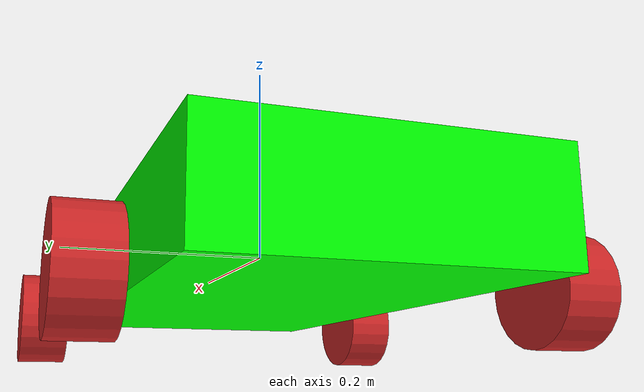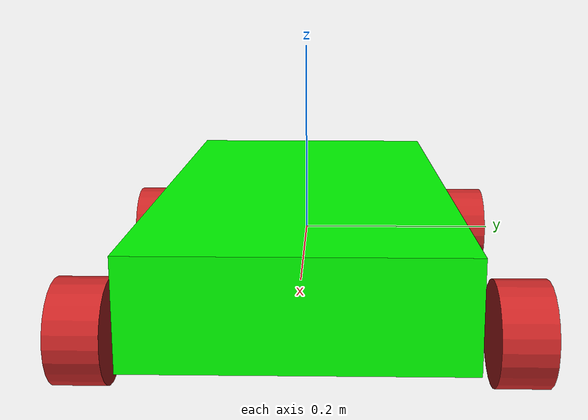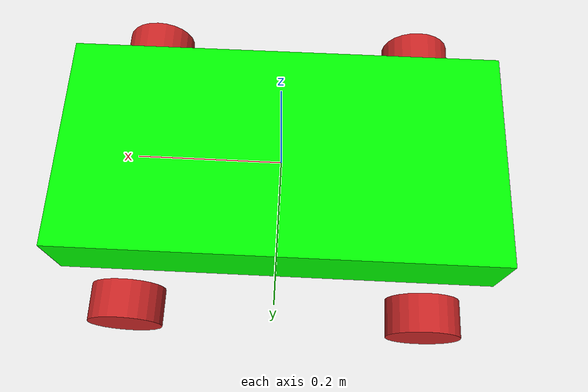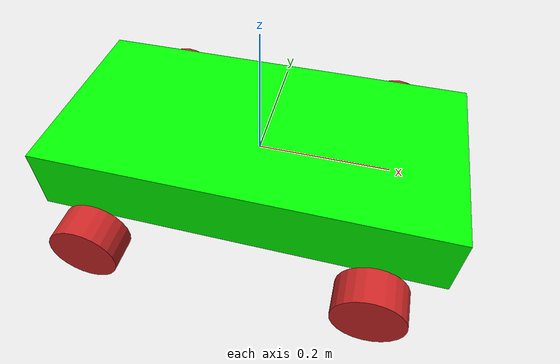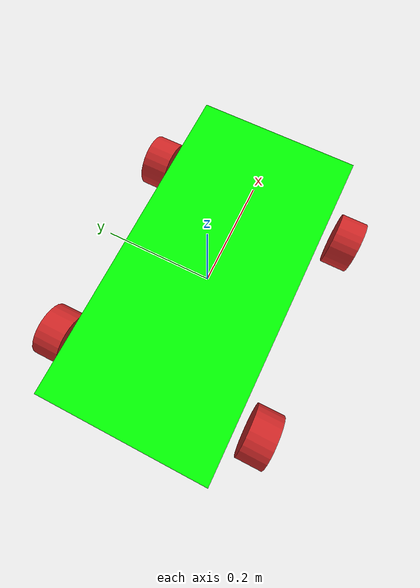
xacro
<?xml version="1.0"?>
<robot xmlns:xacro="http://www.ros.org/wiki/xacro" name="fwd_bot">

    <xacro:include filename="inertial_macros.xacro" />

    <xacro:include filename="gazebo_control.xacro" />
    <!-- xacro:include filename="ros2_control.xacro" / -->

    <xacro:include filename="robot_core.xacro" />

</robot>

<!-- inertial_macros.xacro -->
<robot xmlns:xacro="http://www.ros.org/wiki/xacro" >

    <xacro:macro name="inertial_sphere" params="mass radius *origin">
        <inertial>
            <xacro:insert_block name="origin"/>
            <mass value="${mass}" />
            <inertia ixx="${(2/5) * mass * (radius*radius)}" ixy="0.0" ixz="0.0"
                     iyy="${(2/5) * mass * (radius*radius)}" iyz="0.0"
                     izz="${(2/5) * mass * (radius*radius)}" />
        </inertial>
    </xacro:macro>

    <xacro:macro name="inertial_box" params="mass x y z *origin">
        <inertial>
            <xacro:insert_block name="origin"/>
            <mass value="${mass}" />
            <inertia ixx="${(1/12) * mass * (y*y+z*z)}" ixy="0.0" ixz="0.0"
                     iyy="${(1/12) * mass * (x*x+z*z)}" iyz="0.0"
                     izz="${(1/12) * mass * (x*x+y*y)}" />
        </inertial>
    </xacro:macro>

    <xacro:macro name="inertial_cylinder" params="mass length radius *origin">
        <inertial>
            <xacro:insert_block name="origin"/>
            <mass value="${mass}" />
            <inertia ixx="${(1/12) * mass * (3*radius*radius + length*length)}" ixy="0.0" ixz="0.0"
                     iyy="${(1/12) * mass * (3*radius*radius + length*length)}" iyz="0.0"
                     izz="${(1/2)  * mass * (radius*radius)}" />
        </inertial>
    </xacro:macro>

</robot>

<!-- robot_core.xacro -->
<robot xmlns:xacro="http://www.ros.org/wiki/xacro">
    <xacro:include filename="colors.xacro" />
    <!-- xacro:include filename="inertial_macros.xacro" / -->

    <xacro:property name="base_mass"        value="0.5"  />
    <xacro:property name="base_length"      value="0.6"  />
    <xacro:property name="base_width"       value="0.3"  />
    <xacro:property name="base_height"      value="0.1"  />

    <xacro:property name="wheel_mass"       value="0.1"  />
    <xacro:property name="wheel_radius"     value="0.05" />
    <xacro:property name="wheel_width"      value="0.05"  />
    <xacro:property name="clearance"        value="0.05" />
    <xacro:property name="wheel_separation" value="0.4"  />
    <xacro:property name="wheel_dist_x"     value="0.4"  />

    <xacro:macro name="box_link" params="name size color color_rgb mass mass_x mass_y mass_z" >
        <link name="${name}">
            <visual>
                <geometry>
                    <box size="${size}"/>
                </geometry>
                <material name="${color}">
                    <color rgba="${color_rgb}"/>
                </material>
            </visual>

            <collision>
                <geometry>
                    <box size="${size}"/>
                </geometry>
            </collision>

            <xacro:inertial_box mass="${mass}" x="${mass_x}" y="${mass_y}" z="${mass_z}">
                <origin xyz="${mass_x} ${mass_y} ${mass_z}" rpy="0 0 0"/>
            </xacro:inertial_box>
        </link>
    </xacro:macro>name

    <xacro:macro name="wheel" params="name xyz">
        <link name="${name}_link">
            <visual>
                <geometry>
                    <cylinder radius="${wheel_radius}" length="${wheel_width}" />
                </geometry>

                <material name="red"/>
            </visual>

            <collision>
                <geometry>
                    <cylinder length="${wheel_width}" radius="${wheel_radius}" />
                </geometry>

                <material name="blue"/>
            </collision>

            <xacro:inertial_cylinder mass="${wheel_mass}" length="${wheel_width}" radius="${wheel_radius}">
                <origin xyz="0 0 0" rpy="0 0 0"/>
            </xacro:inertial_cylinder>
        </link>

        <joint name="${name}_joint" type="continuous">
            <parent link="base_link" />
            <child link="${name}_link" />
            <origin xyz="${xyz}" rpy="${pi/2} 0 0"/>
            <axis rpy="0 0 0" xyz="0 0 1"/>
        </joint>

        <gazebo reference="${name}_link">
            <material>Gazebo/Red</material>
        </gazebo>
    </xacro:macro>

    <!-- Robot Description -->

    <link name="base_link">
    </link>

    <xacro:box_link name="chassis" size="${base_length} ${base_width} ${base_height}" color="green" color_rgb="0 1 0 1"
         mass="0.5" mass_x="0.0" mass_y="0.0" mass_z="0.0"/>

    <joint name="chassis_joint" type="fixed">
        <parent link="base_link"/>
        <child link="chassis"/>
        <origin xyz="0 0 0"/>
    </joint>

    <xacro:wheel name="wheel_fr" xyz="${ wheel_dist_x/2} ${ wheel_separation/2} ${-(clearance - wheel_radius + base_height/2)}"/>
    <xacro:wheel name="wheel_fl" xyz="${ wheel_dist_x/2} ${-wheel_separation/2} ${-(clearance - wheel_radius + base_height/2)}"/>
    <xacro:wheel name="wheel_br" xyz="${-wheel_dist_x/2} ${ wheel_separation/2} ${-(clearance - wheel_radius + base_height/2)}"/>
    <xacro:wheel name="wheel_bl" xyz="${-wheel_dist_x/2} ${-wheel_separation/2} ${-(clearance - wheel_radius + base_height/2)}"/>

    <!-- Gazebo Colors -->

</robot>
